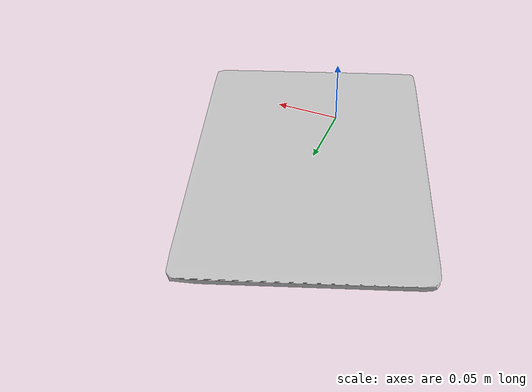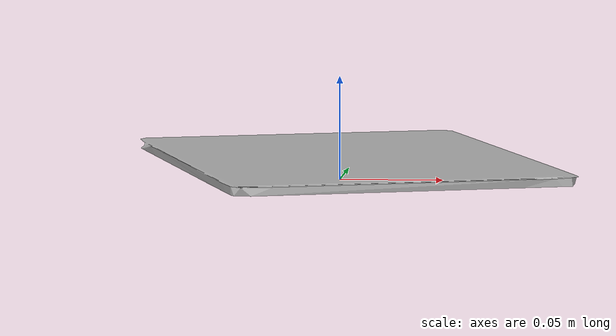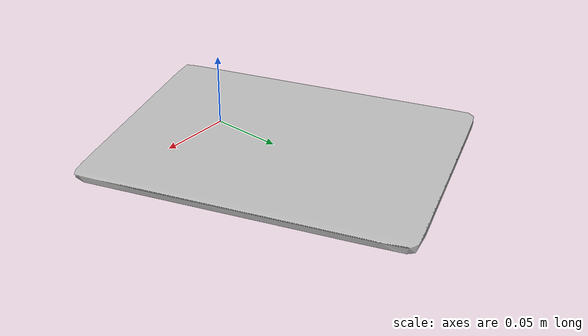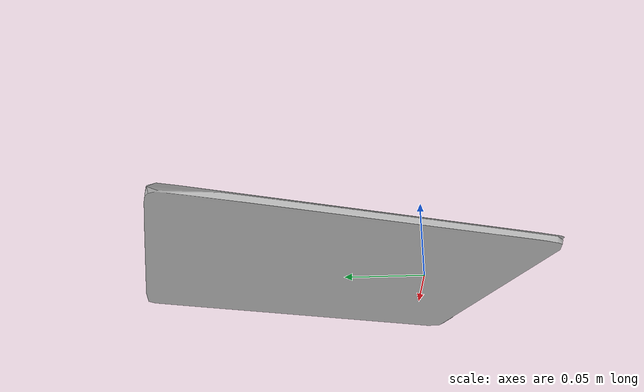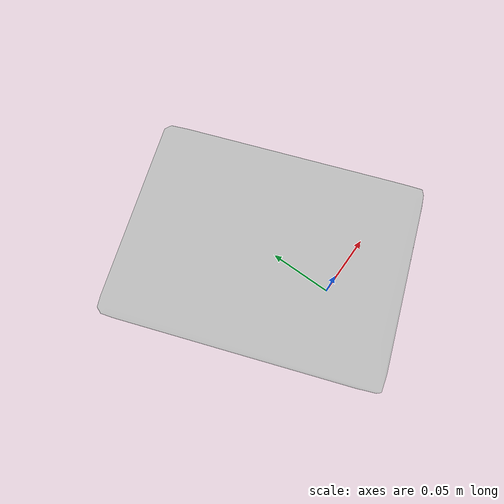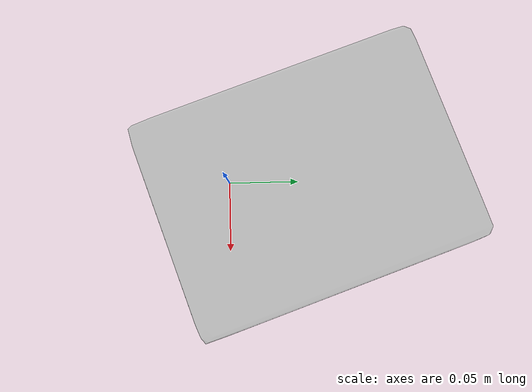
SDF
<?xml version='1.0'?>
<sdf version="1.4">
<model name="notepad">
  <pose>0 0 0  0 0 0</pose>
  <static>true</static>
    <link name="link">

      <collision name="collision">
        <geometry>
          <mesh><uri>model://notepad/meshes/notepad.dae</uri></mesh>
        </geometry>
      </collision>

      <visual name="visual">
        <geometry>
          <mesh><uri>model://notepad/meshes/notepad.dae</uri></mesh>
        </geometry>

        <material>
          <script>
            <uri>model://notepad/materials/scripts</uri>
            <uri>model://notepad/materials/textures</uri>
            <name>Notepad/Diffuse</name>
          </script>
        </material>

      </visual>
    </link>
  </model>
</sdf>
